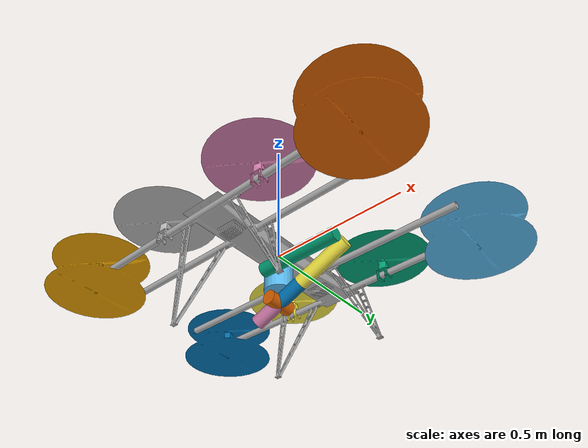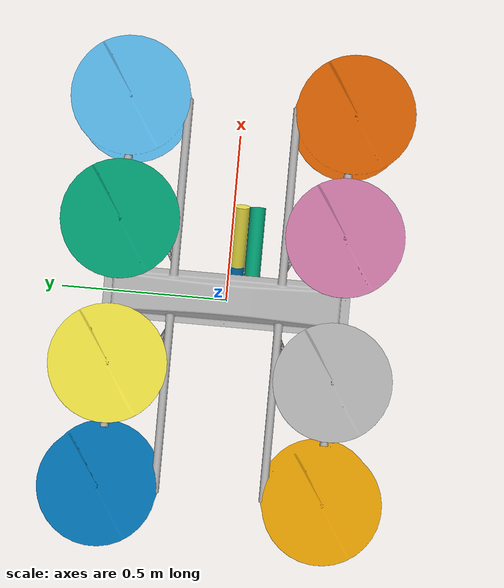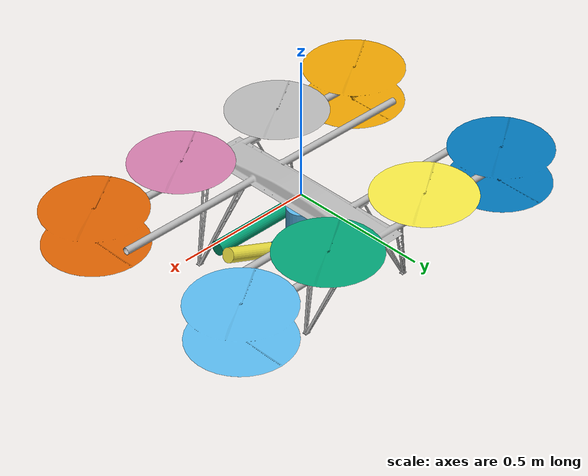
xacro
<?xml version="1.0"?>
<robot name="multicopter" xmlns:xacro="http://www.ros.org/wiki/xacro">
<!-- list of properties -->
  <xacro:property name="PI" value="3.14159265359"/>
  <xacro:property name="with_arm" value="True"/>

<!-- start macros -->
  <xacro:include filename="$(find multicopter_description)/urdf/robot_base.urdf.xacro"/>
  <xacro:include filename="$(find multicopter_description)/urdf/robot_arm.urdf.xacro"/>
  <xacro:multicopter_base_macro base_frame_name="base_link" rotors_y_offset="0.335" rotors_z_offset="0.0" rotors_x_spacing="0.366">
  </xacro:multicopter_base_macro >
  <xacro:if value="${with_arm}">
  <xacro:multicopter_arm_macro base_frame_name="base_link" prefix="multicopter" offset_xyz="0 0 -0.05" offset_rpy="0 ${PI} 0">
  </xacro:multicopter_arm_macro>
  </xacro:if>

</robot>

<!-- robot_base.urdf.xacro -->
<robot xmlns:xacro="http://www.ros.org/wiki/xacro">
  <xacro:macro name="multicopter_base_macro" params="base_frame_name rotors_y_offset rotors_z_offset rotors_x_spacing">
  <!-- xacro:macro name="multicopter_base_macro" params="base_frame_name rotors_y_offset rotors_z_offset rotors_x_spacing mass cog_xyz *inertia" -->
    <link name = "${base_frame_name}">
      <inertial>
        <!-- mass value="${mass}"/ -->
        <!-- origin xyz="${cog_xyz}" rpy="0 0 0"/-->
        <!-- xacro:insert_block name="inertia" / -->
        <mass value="2.375"/>
        <origin xyz="0 0 -0.00832" rpy="0 0 0"/>
        <inertia ixx="0.479" iyy="0.026" izz="0.715" ixy="0.0001313" ixz="0.0" iyz="0.0" />
      </inertial>

      <visual name="visual">
	<origin xyz = "0 0 0" rpy ="0 0 1.57"/>
        <geometry>
          <mesh filename="package://multicopter_description/meshes/body_lander.dae" scale="0.001 0.001 0.001"/>
        </geometry>
      </visual>

      <collision name="${base_frame_name}_collision">
        <origin xyz = "0 0 0" rpy ="0 0 0"/>
        <geometry>
          <box size="1.2 0.4 0.1"/>
        </geometry>
      </collision>

      <!-- landing poles  -->
      <xacro:macro name="landing_pole_macro" params="suffix length sign_x sign_y">
        <collision name="${base_frame_name}_pole_${suffix}_collision">
          <origin xyz = "${sign_x * 0.2} ${sign_y * 0.25} ${-length/2}" rpy ="0 0 0"/>
          <geometry>
            <box size="0.05 0.05 ${length}"/>
          </geometry>
          <contact_coefficients mu="1.5" />
        </collision>
      </xacro:macro>

      <xacro:landing_pole_macro suffix="front_left" length="0.3" sign_x="1" sign_y="1"/>
      <xacro:landing_pole_macro suffix="front_right" length="0.3" sign_x="1" sign_y="-1"/>
      <xacro:landing_pole_macro suffix="rear_left" length="0.3" sign_x="-1" sign_y="1"/>
      <xacro:landing_pole_macro suffix="rear_right" length="0.3" sign_x="-1" sign_y="-1"/>
    </link>

      <!-- rotors -->
    <xacro:macro name="rotor_macro" params="suffix radius height x_offset y_offset z_offset">
      <link name = "${base_frame_name}_rotor_${suffix}_link">
	<inertial>
	  <origin xyz = "0 0 0" rpy = "0 0 0" />
	  <inertia ixx="0.001" ixy="0" ixz="0" iyy="0.001" iyz = "0" izz="0.001" />
	  <mass value="0.05" />
        </inertial>
        <visual name="${base_frame_name}_rotor_${suffix}_visual">
          <!--origin xyz = "${x_offset} ${y_offset} ${z_offset}" rpy ="0 0 0"/-->
          <geometry>
            <mesh filename="package://multicopter_description/meshes/HORUS_Motorset_MONO.dae" scale="0.001 0.001 0.001"/>
          </geometry>
        </visual>
        <collision name="${base_frame_name}_rotor_${suffix}_collision">
          <!--origin xyz = "${x_offset} ${y_offset} ${z_offset + height/2}" rpy ="0 0 0"/-->
          <origin xyz = "0 0 ${height/2}" rpy ="0 0 0"/>
          <geometry>
            <cylinder length="${height}" radius="${radius}"/>
          </geometry>
        </collision>
      </link>
      <joint name="${base_frame_name}_rotor_${suffix}_joint" type="fixed">
        <axis xyz = "0 1 0" />
        <origin xyz = "${x_offset} ${y_offset} ${z_offset}" rpy ="0 0 0"/>
        <parent link="${base_frame_name}" />
        <child link="${base_frame_name}_rotor_${suffix}_link" />
      </joint>
      <gazebo reference = "${base_frame_name}_rotor_${suffix}_joint" >
        <disableFixedJointLumping>true</disableFixedJointLumping>
      </gazebo>
    </xacro:macro>

    <xacro:macro name="rotor_macro_koax" params="suffix radius height x_offset y_offset z_offset">
      <link name = "${base_frame_name}_rotor_${suffix}_link">
	<inertial>
	  <origin xyz = "0 0 0" rpy = "0 0 0" />
	  <inertia ixx="0.001" ixy="0" ixz="0" iyy="0.001" iyz = "0" izz="0.001" />
	  <mass value="0.05" />
        </inertial>
        <visual name="${base_frame_name}_rotor_${suffix}_visual">
          <!-- origin xyz = "${x_offset} ${y_offset} ${z_offset}" rpy ="0 0 0"/-->
          <geometry>
            <mesh filename="package://multicopter_description/meshes/HORUS_Motorset_KOAX.dae" scale="0.001 0.001 0.001"/>
          </geometry>
        </visual>
        <collision name="${base_frame_name}_rotor_${suffix}_collision">
          <!--origin xyz = "${x_offset} ${y_offset} ${z_offset}" rpy ="0 0 0"/-->
          <geometry>
            <cylinder length="${height}" radius="${radius}"/>
          </geometry>
        </collision>
      </link>
      <joint name="${base_frame_name}_rotor_${suffix}_joint" type="fixed">
        <origin xyz = "${x_offset} ${y_offset} ${z_offset}" rpy ="0 0 0"/>
        <parent link="${base_frame_name}" />
        <child link="${base_frame_name}_rotor_${suffix}_link" />
      </joint>
      <gazebo reference = "${base_frame_name}_rotor_${suffix}_joint" >
        <disableFixedJointLumping>true</disableFixedJointLumping>
      </gazebo>
    </xacro:macro>

      <xacro:rotor_macro_koax suffix="front_front_left" radius="0.18" height="0.22" x_offset="${rotors_x_spacing+0.215}" y_offset="${rotors_y_offset}" z_offset="${rotors_z_offset}"/>
      <xacro:rotor_macro suffix="front_mid_left" radius="0.18" height="0.11" x_offset="0.215" y_offset="${rotors_y_offset}" z_offset="${rotors_z_offset}"/>
      <xacro:rotor_macro suffix="rear_mid_left" radius="0.18" height="0.11" x_offset="-0.215" y_offset="${rotors_y_offset}" z_offset="${rotors_z_offset}"/>
      <xacro:rotor_macro_koax suffix="rear_rear_left" radius="0.18" height="0.22" x_offset="${-rotors_x_spacing-0.215}" y_offset="${rotors_y_offset}" z_offset="${rotors_z_offset}"/>

      <xacro:rotor_macro_koax suffix="front_front_right" radius="0.18" height="0.22" x_offset="${rotors_x_spacing+0.215}" y_offset="${-rotors_y_offset}" z_offset="${rotors_z_offset}"/>
      <xacro:rotor_macro suffix="front_mid_right" radius="0.18" height="0.11" x_offset="0.215" y_offset="${-rotors_y_offset}" z_offset="${rotors_z_offset}"/>
      <xacro:rotor_macro suffix="rear_mid_right" radius="0.18" height="0.11" x_offset="-0.215" y_offset="${-rotors_y_offset}" z_offset="${rotors_z_offset}"/>
      <xacro:rotor_macro_koax suffix="rear_rear_right" radius="0.18" height="0.22" x_offset="${-rotors_x_spacing-0.215}" y_offset="${-rotors_y_offset}" z_offset="${rotors_z_offset}"/>

  </xacro:macro>
</robot>

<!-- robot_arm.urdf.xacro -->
<robot xmlns:xacro="http://www.ros.org/wiki/xacro">
  <xacro:macro name="multicopter_arm_macro" params="base_frame_name prefix offset_xyz offset_rpy">

  <xacro:property name="PI" value="3.14159265359"/>

  <xacro:property name="length_1" value="0.1"/>
  <xacro:property name="radius_1" value="0.05"/>
  <xacro:property name="mass_1" value="0.2"/>
  <xacro:property name="length_2" value="0.3"/>
  <xacro:property name="radius_2" value="0.025"/>
  <xacro:property name="mass_2" value="0.2"/>
  <xacro:property name="length_3" value="0.2"/>
  <xacro:property name="radius_3" value="0.025"/>
  <xacro:property name="mass_3" value="0.2"/>
  <xacro:property name="length_4" value="0.1"/>
  <xacro:property name="radius_4" value="0.025"/>
  <xacro:property name="mass_4" value="0.2"/>
  <xacro:property name="length_5" value="0.1"/>
  <xacro:property name="radius_5" value="0.025"/>
  <xacro:property name="length_5" value="0.1"/>
  <xacro:property name="mass_5" value="0.2"/>
  <xacro:property name="radius_6" value="0.025"/>
  <xacro:property name="length_6" value="0.1"/>
  <xacro:property name="mass_6" value="0.2"/>

  <link name="${prefix}_arm_link_1">
    <inertial>
      <origin xyz="0 0 ${length_1/2}" rpy="0 0 0"/>
      <mass value="${mass_1}"/>
      <inertia ixx="${mass_1/4*radius_1*radius_1 + mass_1/12 * length_1 * length_1}"
               iyy="${mass_1/4*radius_1*radius_1 + mass_1/12 * length_1 * length_1}"
               izz="${mass_1/2*radius_1}" ixy="0" ixz="0" iyz="0"/>
    </inertial>
    <visual>
      <origin xyz="0 0 ${length_1/2}" rpy="0 0 0"/>
      <geometry>
        <cylinder length="${length_1}" radius="${radius_1}"/>
      </geometry>
    </visual>
    <collision>
      <origin xyz="0 0 ${length_1/2}" rpy="0 0 0"/>
      <geometry>
        <cylinder length="${length_1}" radius="${radius_1}"/>
      </geometry>
    </collision>
  </link>
  <link name="${prefix}_arm_link_2">
    <inertial>
      <origin xyz="0 0 ${length_2/2}" rpy="0 0 0"/>
      <mass value="${mass_2}"/>
      <inertia ixx="${mass_2/4*radius_2*radius_2 + mass_2/12 * length_2 * length_2}"
               iyy="${mass_2/4*radius_2*radius_2 + mass_2/12 * length_2 * length_2}"
               izz="${mass_2/2*radius_2}" ixy="0" ixz="0" iyz="0"/>
    </inertial>
    <visual>
      <origin xyz="0 0 ${length_2/2}" rpy="0 0 0"/>
      <geometry>
        <cylinder length="${length_2}" radius="${radius_2}"/>
      </geometry>
    </visual>
    <collision>
      <origin xyz="0 0 ${length_2/2}" rpy="0 0 0"/>
      <geometry>
        <cylinder length="${length_2}" radius="${radius_2}"/>
      </geometry>
    </collision>
  </link>
  <link name="${prefix}_arm_link_3">
    <inertial>
      <origin xyz="0 0 ${length_3/2}" rpy="0 0 0"/>
      <mass value="${mass_3}"/>
      <inertia ixx="${mass_3/4*radius_3*radius_3 + mass_3/12 * length_3 * length_3}"
               iyy="${mass_3/4*radius_3*radius_3 + mass_3/12 * length_3 * length_3}"
               izz="${mass_3/2*radius_3}" ixy="0" ixz="0" iyz="0"/>
    </inertial>
    <visual>
      <origin xyz="0 0 ${length_3/2}" rpy="0 0 0"/>
      <geometry>
        <cylinder length="${length_3}" radius="${radius_3}"/>
      </geometry>
    </visual>
    <collision>
      <origin xyz="0 0 ${length_3/2}" rpy="0 0 0"/>
      <geometry>
        <cylinder length="${length_3}" radius="${radius_3}"/>
      </geometry>
    </collision>
  </link>

  <link name="${prefix}_arm_link_4">
    <inertial>
      <origin xyz="0 0 ${length_4/2}" rpy="0 0 0"/>
      <mass value="${mass_4}"/>
      <inertia ixx="${mass_4/4*radius_4*radius_4 + mass_4/12 * length_4 * length_4}"
               iyy="${mass_4/4*radius_4*radius_4 + mass_4/12 * length_4 * length_4}"
               izz="${mass_4/2*radius_4}" ixy="0" ixz="0" iyz="0"/>
    </inertial>
    <visual>
      <origin xyz="0 0 ${length_4/2}" rpy="0 0 0"/>
      <geometry>
        <cylinder length="${length_4}" radius="${radius_4}"/>
      </geometry>
    </visual>
    <collision>
      <origin xyz="0 0 ${length_4/2}" rpy="0 0 0"/>
      <geometry>
        <cylinder length="${length_4}" radius="${radius_4}"/>
      </geometry>
    </collision>
  </link>

  <link name="${prefix}_arm_link_5">
    <inertial>
      <origin xyz="0 0 ${length_5/2}" rpy="0 0 0"/>
      <mass value="${mass_5}"/>
      <inertia ixx="${mass_5/4*radius_5*radius_5 + mass_5/12 * length_5 * length_5}"
               iyy="${mass_5/4*radius_5*radius_5 + mass_5/12 * length_5 * length_5}"
               izz="${mass_5/2*radius_5}" ixy="0" ixz="0" iyz="0"/>
    </inertial>
    <visual>
      <origin xyz="0 0 ${length_5/2}" rpy="0 0 0"/>
      <geometry>
        <cylinder length="${length_5}" radius="${radius_5}"/>
      </geometry>
    </visual>
    <collision>
      <origin xyz="0 0 ${length_5/2}" rpy="0 0 0"/>
      <geometry>
        <cylinder length="${length_5}" radius="${radius_5}"/>
      </geometry>
    </collision>
  </link>

  <link name="${prefix}_arm_link_6">
    <inertial>
      <origin xyz="0 0 ${length_6/2}" rpy="0 0 0"/>
      <mass value="${mass_6}"/>
      <inertia ixx="${mass_6/4*radius_6*radius_6 + mass_6/12 * length_6 * length_6}"
               iyy="${mass_6/4*radius_6*radius_6 + mass_6/12 * length_6 * length_6}"
               izz="${mass_6/2*radius_6}" ixy="0" ixz="0" iyz="0"/>
    </inertial>
    <visual>
      <origin xyz="0 0 ${length_6/2}" rpy="0 0 0"/>
      <geometry>
        <cylinder length="${length_6}" radius="${radius_6}"/>
      </geometry>
    </visual>
    <collision>
      <origin xyz="0 0 ${length_6/2}" rpy="0 0 0"/>
      <geometry>
        <cylinder length="${length_6}" radius="${radius_6}"/>
      </geometry>
    </collision>
  </link>

  <joint name="${prefix}_arm_joint_1" type="revolute">
    <origin xyz="${offset_xyz}" rpy="${offset_rpy}"/>
    <axis xyz="0 0 1"/>
    <parent link="${base_frame_name}"/>
    <child link="${prefix}_arm_link_1"/>
    <dynamics damping="0.005" friction="0.01" />
    <limit upper="${3/4*PI}" lower="${-3/4*PI}" effort="20" velocity="3"/>
  </joint>

  <joint name="${prefix}_arm_joint_2" type="revolute">
    <origin xyz="0 ${-radius_2-radius_1} ${length_1/2}" rpy="0 ${-PI / 2} 0"/>
    <axis xyz="0 1 0"/>
    <parent link="${prefix}_arm_link_1"/>
    <child link="${prefix}_arm_link_2"/>
    <dynamics damping="0.005" friction="0.01" />
    <limit upper="${PI}" lower="0" effort="20" velocity="3"/>
  </joint>

  <joint name="${prefix}_arm_joint_3" type="revolute">
    <origin xyz="0 ${radius_3+radius_2} ${length_2}" rpy="0 ${PI *7/ 8} 0"/>
    <axis xyz="0 1 0"/>
    <parent link="${prefix}_arm_link_2"/>
    <child link="${prefix}_arm_link_3"/>
    <dynamics damping="0.005" friction="0.01" />
    <limit upper="0" lower="${-PI*7/4}" effort="20" velocity="3"/>
  </joint>

  <joint name="${prefix}_arm_joint_4" type="revolute">
    <origin xyz="0 0 ${length_3}" rpy="0 0 0"/>
    <axis xyz="0 0 1"/>
    <parent link="${prefix}_arm_link_3"/>
    <child link="${prefix}_arm_link_4"/>
    <dynamics damping="0.005" friction="0.01" />
    <limit upper="${PI*3/2}" lower="${-PI*3/2}" effort="20" velocity="3"/>
  </joint>

  <joint name="${prefix}_arm_joint_5" type="revolute">
    <origin xyz="0 ${length_5/2} ${length_4}" rpy="${PI/2} 0 0"/>
    <axis xyz="0 0 1"/>
    <parent link="${prefix}_arm_link_4"/>
    <child link="${prefix}_arm_link_5"/>
    <dynamics damping="0.005" friction="0.01" />
    <limit upper="${PI/2}" lower="${-PI/2}" effort="20" velocity="3"/>
  </joint>

  <joint name="${prefix}_arm_joint_6" type="revolute">
    <origin xyz="0 0 ${length_5/2}" rpy="${-PI/2} 0 0"/>
    <axis xyz="0 0 1"/>
    <parent link="${prefix}_arm_link_5"/>
    <child link="${prefix}_arm_link_6"/>
    <dynamics damping="0.005" friction="0.01" />
    <limit upper="${PI*3/2}" lower="${-PI*3/2}" effort="20" velocity="3"/>
  </joint>

  <transmission name="${prefix}_trans_1">
    <type>transmission_interface/SimpleTransmission</type>
    <joint name="${prefix}_arm_joint_1">
      <hardwareInterface>EffortJointInterface</hardwareInterface>
    </joint>
    <actuator name="${prefix}_arm_motor_1">
      <hardwareInterface>EffortJointInterface</hardwareInterface>
      <mechanicalReduction>1</mechanicalReduction>
    </actuator>
  </transmission>
  <transmission name="${prefix}_trans_2">
    <type>transmission_interface/SimpleTransmission</type>
    <joint name="${prefix}_arm_joint_2">
      <hardwareInterface>EffortJointInterface</hardwareInterface>
    </joint>
    <actuator name="${prefix}_arm_motor_2" >
      <hardwareInterface>EffortJointInterface</hardwareInterface>
      <mechanicalReduction>1</mechanicalReduction>
    </actuator>
  </transmission>
  <transmission name="${prefix}_trans_3">
    <type>transmission_interface/SimpleTransmission</type>
    <joint name="${prefix}_arm_joint_3">
      <hardwareInterface>EffortJointInterface</hardwareInterface>
    </joint>
    <actuator name="${prefix}_arm_motor_3" >
      <hardwareInterface>EffortJointInterface</hardwareInterface>
      <mechanicalReduction>1</mechanicalReduction>
    </actuator>
  </transmission>
  <transmission name="${prefix}_trans_4">
    <type>transmission_interface/SimpleTransmission</type>
    <joint name="${prefix}_arm_joint_4">
      <hardwareInterface>EffortJointInterface</hardwareInterface>
    </joint>
    <actuator name="${prefix}_arm_motor_4" >
      <hardwareInterface>EffortJointInterface</hardwareInterface>
      <mechanicalReduction>1</mechanicalReduction>
    </actuator>
  </transmission>
  <transmission name="${prefix}_trans_5">
    <type>transmission_interface/SimpleTransmission</type>
    <joint name="${prefix}_arm_joint_5">
      <hardwareInterface>EffortJointInterface</hardwareInterface>
    </joint>
    <actuator name="${prefix}_arm_motor_5" >
      <hardwareInterface>EffortJointInterface</hardwareInterface>
      <mechanicalReduction>1</mechanicalReduction>
    </actuator>
  </transmission>
  <transmission name="${prefix}_trans_6">
    <type>transmission_interface/SimpleTransmission</type>
    <joint name="${prefix}_arm_joint_6">
      <hardwareInterface>EffortJointInterface</hardwareInterface>
    </joint>
    <actuator name="${prefix}_arm_motor_6" >
      <hardwareInterface>EffortJointInterface</hardwareInterface>
      <mechanicalReduction>1</mechanicalReduction>
    </actuator>
  </transmission>

  </xacro:macro>
</robot>
